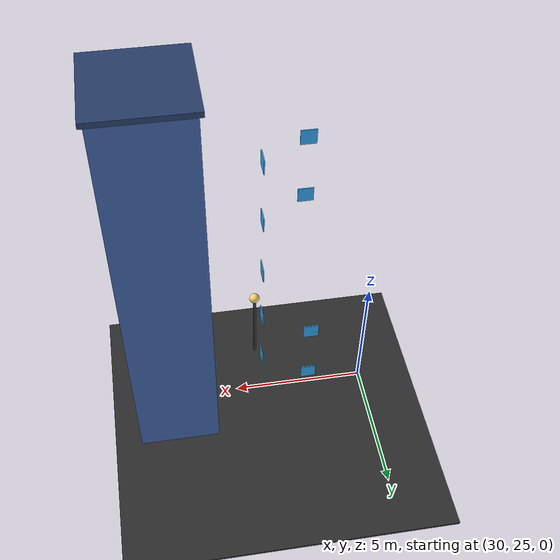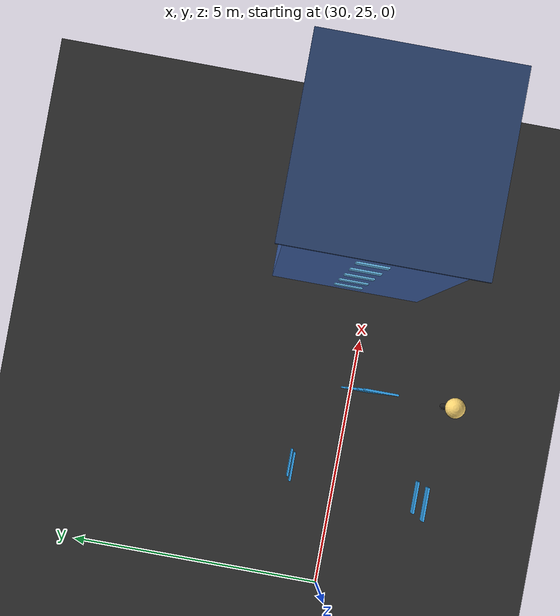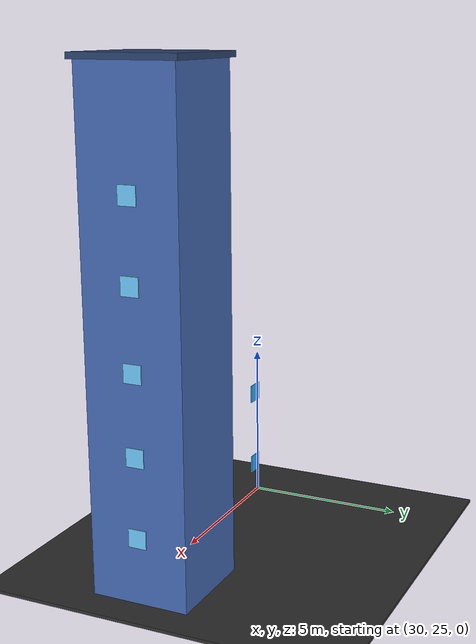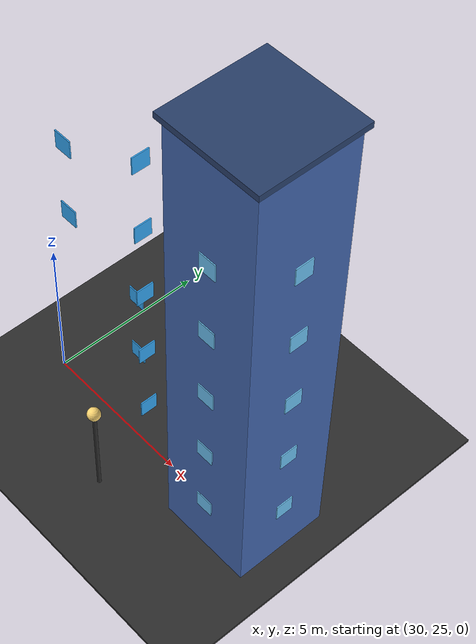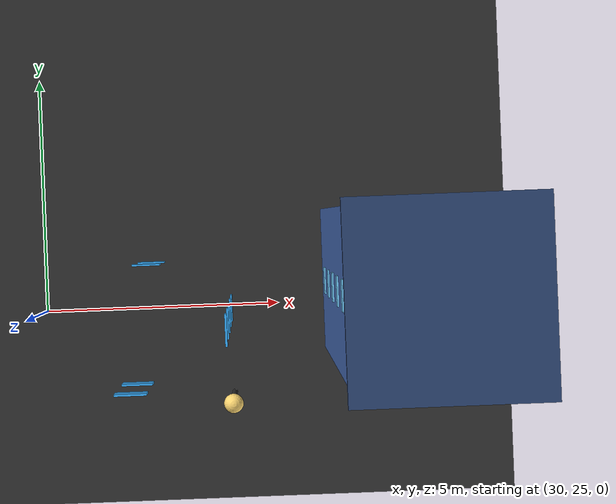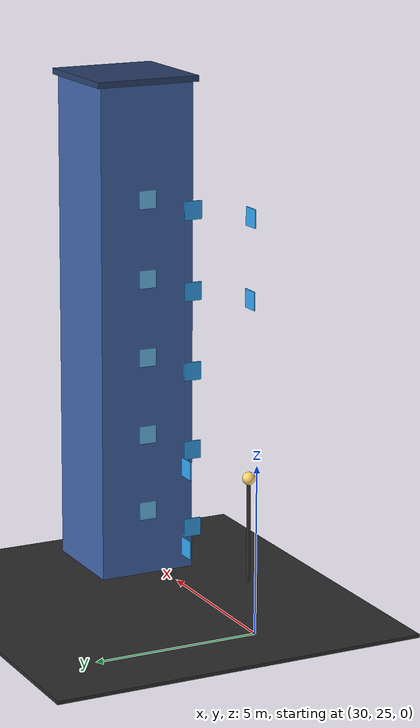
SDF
<sdf version="1.10">
 <world name="city_uav_demo">
  <model name="ground_plane">
   <static>true</static>
   <pose>20.0000 20.0000 -0.0500 0 0 0.0000</pose>
   <link name="link">
    <collision name="collision"><geometry><box><size>40.0000 40.0000 0.1000</size></box></geometry></collision>
    <visual name="visual">
     <geometry><box><size>40.0000 40.0000 0.1000</size></box></geometry>
     <material><ambient>0.18 0.18 0.18 1.0</ambient><diffuse>0.18 0.18 0.18 1.0</diffuse></material>
    </visual>
   </link>
  </model>
  <model name="building_5_body">
   <static>true</static>
   <pose>37.5000 25.5000 7.5000 0 0 0.0000</pose>
   <link name="link">
    <collision name="collision"><geometry><box><size>3.0000 3.0000 15.0000</size></box></geometry></collision>
    <visual name="visual">
     <geometry><box><size>3.0000 3.0000 15.0000</size></box></geometry>
     <material><ambient>0.26 0.40 0.68 1.0</ambient><diffuse>0.26 0.40 0.68 1.0</diffuse></material>
    </visual>
   </link>
  </model>
  <model name="building_5_roof">
   <static>true</static>
   <pose>37.5000 25.5000 15.0900 0 0 0.0000</pose>
   <link name="link">
    <collision name="collision"><geometry><box><size>3.2500 3.2500 0.1800</size></box></geometry></collision>
    <visual name="visual">
     <geometry><box><size>3.2500 3.2500 0.1800</size></box></geometry>
     <material><ambient>0.16 0.25 0.42 1.0</ambient><diffuse>0.16 0.25 0.42 1.0</diffuse></material>
    </visual>
   </link>
  </model>
  <model name="building_5_window_front_0">
   <static>true</static>
   <pose>37.5000 23.9880 2.0000 0 0 0.0000</pose>
   <link name="link">
    <visual name="visual">
     <geometry><box><size>0.5500 0.0350 0.5500</size></box></geometry>
     <material><ambient>0.42 0.76 0.95 1.0</ambient><diffuse>0.42 0.76 0.95 1.0</diffuse></material>
    </visual>
   </link>
  </model>
  <model name="building_5_window_front_1">
   <static>true</static>
   <pose>37.5000 23.9880 4.4000 0 0 0.0000</pose>
   <link name="link">
    <visual name="visual">
     <geometry><box><size>0.5500 0.0350 0.5500</size></box></geometry>
     <material><ambient>0.42 0.76 0.95 1.0</ambient><diffuse>0.42 0.76 0.95 1.0</diffuse></material>
    </visual>
   </link>
  </model>
  <model name="building_5_window_front_2">
   <static>true</static>
   <pose>37.5000 23.9880 6.8000 0 0 0.0000</pose>
   <link name="link">
    <visual name="visual">
     <geometry><box><size>0.5500 0.0350 0.5500</size></box></geometry>
     <material><ambient>0.42 0.76 0.95 1.0</ambient><diffuse>0.42 0.76 0.95 1.0</diffuse></material>
    </visual>
   </link>
  </model>
  <model name="building_5_window_front_3">
   <static>true</static>
   <pose>37.5000 23.9880 9.2000 0 0 0.0000</pose>
   <link name="link">
    <visual name="visual">
     <geometry><box><size>0.5500 0.0350 0.5500</size></box></geometry>
     <material><ambient>0.42 0.76 0.95 1.0</ambient><diffuse>0.42 0.76 0.95 1.0</diffuse></material>
    </visual>
   </link>
  </model>
  <model name="building_5_window_front_4">
   <static>true</static>
   <pose>37.5000 23.9880 11.6000 0 0 0.0000</pose>
   <link name="link">
    <visual name="visual">
     <geometry><box><size>0.5500 0.0350 0.5500</size></box></geometry>
     <material><ambient>0.42 0.76 0.95 1.0</ambient><diffuse>0.42 0.76 0.95 1.0</diffuse></material>
    </visual>
   </link>
  </model>
  <model name="building_5_window_left_0">
   <static>true</static>
   <pose>35.9880 25.5000 2.0000 0 0 0.0000</pose>
   <link name="link">
    <visual name="visual">
     <geometry><box><size>0.0350 0.5500 0.5500</size></box></geometry>
     <material><ambient>0.42 0.76 0.95 1.0</ambient><diffuse>0.42 0.76 0.95 1.0</diffuse></material>
    </visual>
   </link>
  </model>
  <model name="building_5_window_left_1">
   <static>true</static>
   <pose>35.9880 25.5000 4.4000 0 0 0.0000</pose>
   <link name="link">
    <visual name="visual">
     <geometry><box><size>0.0350 0.5500 0.5500</size></box></geometry>
     <material><ambient>0.42 0.76 0.95 1.0</ambient><diffuse>0.42 0.76 0.95 1.0</diffuse></material>
    </visual>
   </link>
  </model>
  <model name="building_5_window_left_2">
   <static>true</static>
   <pose>35.9880 25.5000 6.8000 0 0 0.0000</pose>
   <link name="link">
    <visual name="visual">
     <geometry><box><size>0.0350 0.5500 0.5500</size></box></geometry>
     <material><ambient>0.42 0.76 0.95 1.0</ambient><diffuse>0.42 0.76 0.95 1.0</diffuse></material>
    </visual>
   </link>
  </model>
  <model name="building_5_window_left_3">
   <static>true</static>
   <pose>35.9880 25.5000 9.2000 0 0 0.0000</pose>
   <link name="link">
    <visual name="visual">
     <geometry><box><size>0.0350 0.5500 0.5500</size></box></geometry>
     <material><ambient>0.42 0.76 0.95 1.0</ambient><diffuse>0.42 0.76 0.95 1.0</diffuse></material>
    </visual>
   </link>
  </model>
  <model name="building_5_window_left_4">
   <static>true</static>
   <pose>35.9880 25.5000 11.6000 0 0 0.0000</pose>
   <link name="link">
    <visual name="visual">
     <geometry><box><size>0.0350 0.5500 0.5500</size></box></geometry>
     <material><ambient>0.42 0.76 0.95 1.0</ambient><diffuse>0.42 0.76 0.95 1.0</diffuse></material>
    </visual>
   </link>
  </model>
  <model name="building_5_window_right_0">
   <static>true</static>
   <pose>39.0120 25.5000 2.0000 0 0 0.0000</pose>
   <link name="link">
    <visual name="visual">
     <geometry><box><size>0.0350 0.5500 0.5500</size></box></geometry>
     <material><ambient>0.42 0.76 0.95 1.0</ambient><diffuse>0.42 0.76 0.95 1.0</diffuse></material>
    </visual>
   </link>
  </model>
  <model name="building_5_window_right_1">
   <static>true</static>
   <pose>39.0120 25.5000 4.4000 0 0 0.0000</pose>
   <link name="link">
    <visual name="visual">
     <geometry><box><size>0.0350 0.5500 0.5500</size></box></geometry>
     <material><ambient>0.42 0.76 0.95 1.0</ambient><diffuse>0.42 0.76 0.95 1.0</diffuse></material>
    </visual>
   </link>
  </model>
  <model name="building_5_window_right_2">
   <static>true</static>
   <pose>39.0120 25.5000 6.8000 0 0 0.0000</pose>
   <link name="link">
    <visual name="visual">
     <geometry><box><size>0.0350 0.5500 0.5500</size></box></geometry>
     <material><ambient>0.42 0.76 0.95 1.0</ambient><diffuse>0.42 0.76 0.95 1.0</diffuse></material>
    </visual>
   </link>
  </model>
  <model name="building_5_window_right_3">
   <static>true</static>
   <pose>39.0120 25.5000 9.2000 0 0 0.0000</pose>
   <link name="link">
    <visual name="visual">
     <geometry><box><size>0.0350 0.5500 0.5500</size></box></geometry>
     <material><ambient>0.42 0.76 0.95 1.0</ambient><diffuse>0.42 0.76 0.95 1.0</diffuse></material>
    </visual>
   </link>
  </model>
  <model name="building_5_window_right_4">
   <static>true</static>
   <pose>39.0120 25.5000 11.6000 0 0 0.0000</pose>
   <link name="link">
    <visual name="visual">
     <geometry><box><size>0.0350 0.5500 0.5500</size></box></geometry>
     <material><ambient>0.42 0.76 0.95 1.0</ambient><diffuse>0.42 0.76 0.95 1.0</diffuse></material>
    </visual>
   </link>
  </model>
  <model name="building_7_window_front_7">
   <static>true</static>
   <pose>32.3750 23.9880 9.2000 0 0 0.0000</pose>
   <link name="link">
    <visual name="visual">
     <geometry><box><size>0.5500 0.0350 0.5500</size></box></geometry>
     <material><ambient>0.20 0.65 0.95 1.0</ambient><diffuse>0.20 0.65 0.95 1.0</diffuse></material>
    </visual>
   </link>
  </model>
  <model name="building_7_window_front_9">
   <static>true</static>
   <pose>32.3750 23.9880 11.6000 0 0 0.0000</pose>
   <link name="link">
    <visual name="visual">
     <geometry><box><size>0.5500 0.0350 0.5500</size></box></geometry>
     <material><ambient>0.20 0.65 0.95 1.0</ambient><diffuse>0.20 0.65 0.95 1.0</diffuse></material>
    </visual>
   </link>
  </model>
  <model name="building_7_window_back_1">
   <static>true</static>
   <pose>32.3750 26.0120 2.0000 0 0 0.0000</pose>
   <link name="link">
    <visual name="visual">
     <geometry><box><size>0.5500 0.0350 0.5500</size></box></geometry>
     <material><ambient>0.20 0.65 0.95 1.0</ambient><diffuse>0.20 0.65 0.95 1.0</diffuse></material>
    </visual>
   </link>
  </model>
  <model name="building_7_window_back_3">
   <static>true</static>
   <pose>32.3750 26.0120 4.4000 0 0 0.0000</pose>
   <link name="link">
    <visual name="visual">
     <geometry><box><size>0.5500 0.0350 0.5500</size></box></geometry>
     <material><ambient>0.20 0.65 0.95 1.0</ambient><diffuse>0.20 0.65 0.95 1.0</diffuse></material>
    </visual>
   </link>
  </model>
  <model name="building_7_window_right_0">
   <static>true</static>
   <pose>34.0120 25.0000 2.0000 0 0 0.0000</pose>
   <link name="link">
    <visual name="visual">
     <geometry><box><size>0.0350 0.5500 0.5500</size></box></geometry>
     <material><ambient>0.20 0.65 0.95 1.0</ambient><diffuse>0.20 0.65 0.95 1.0</diffuse></material>
    </visual>
   </link>
  </model>
  <model name="building_7_window_right_1">
   <static>true</static>
   <pose>34.0120 25.0000 4.4000 0 0 0.0000</pose>
   <link name="link">
    <visual name="visual">
     <geometry><box><size>0.0350 0.5500 0.5500</size></box></geometry>
     <material><ambient>0.20 0.65 0.95 1.0</ambient><diffuse>0.20 0.65 0.95 1.0</diffuse></material>
    </visual>
   </link>
  </model>
  <model name="building_7_window_right_2">
   <static>true</static>
   <pose>34.0120 25.0000 6.8000 0 0 0.0000</pose>
   <link name="link">
    <visual name="visual">
     <geometry><box><size>0.0350 0.5500 0.5500</size></box></geometry>
     <material><ambient>0.20 0.65 0.95 1.0</ambient><diffuse>0.20 0.65 0.95 1.0</diffuse></material>
    </visual>
   </link>
  </model>
  <model name="building_7_window_right_3">
   <static>true</static>
   <pose>34.0120 25.0000 9.2000 0 0 0.0000</pose>
   <link name="link">
    <visual name="visual">
     <geometry><box><size>0.0350 0.5500 0.5500</size></box></geometry>
     <material><ambient>0.20 0.65 0.95 1.0</ambient><diffuse>0.20 0.65 0.95 1.0</diffuse></material>
    </visual>
   </link>
  </model>
  <model name="building_7_window_right_4">
   <static>true</static>
   <pose>34.0120 25.0000 11.6000 0 0 0.0000</pose>
   <link name="link">
    <visual name="visual">
     <geometry><box><size>0.0350 0.5500 0.5500</size></box></geometry>
     <material><ambient>0.20 0.65 0.95 1.0</ambient><diffuse>0.20 0.65 0.95 1.0</diffuse></material>
    </visual>
   </link>
  </model>
  <model name="streetlight_5_pole">
   <static>true</static>
   <pose>34.0000 23.1000 1.6000 0.0000 0.0000 0.0000</pose>
   <link name="link">
    <visual name="visual">
     <geometry><cylinder><radius>0.0600</radius><length>3.2000</length></cylinder></geometry>
     <material><ambient>0.18 0.18 0.18 1.0</ambient><diffuse>0.18 0.18 0.18 1.0</diffuse></material>
    </visual>
   </link>
  </model>
  <model name="streetlight_5_lamp">
   <static>true</static>
   <pose>34.0000 23.1000 3.2500 0 0 0</pose>
   <link name="link">
    <visual name="visual">
     <geometry><sphere><radius>0.2000</radius></sphere></geometry>
     <material><ambient>1.0 0.85 0.45 1.0</ambient><diffuse>1.0 0.85 0.45 1.0</diffuse></material>
    </visual>
   </link>
  </model>
 </world>
</sdf>
